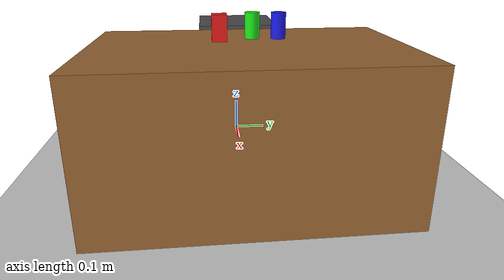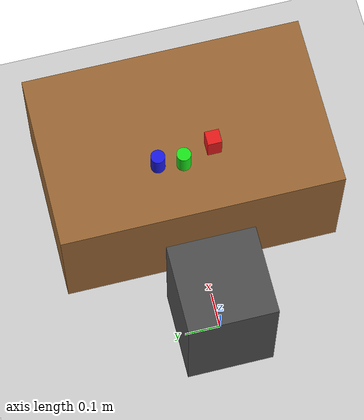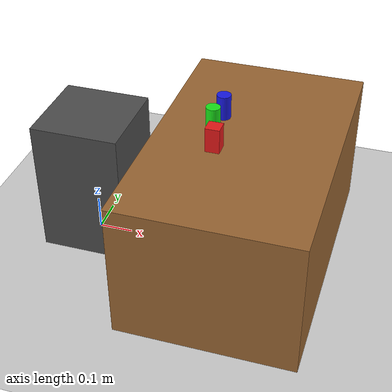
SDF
<?xml version="1.0" ?>
<sdf version="1.8">
  <world name="pick_place_test2">

    <physics name="1ms" type="ignored">
      <max_step_size>0.001</max_step_size>
      <real_time_factor>1.0</real_time_factor>
    </physics>

    <plugin filename="gz-sim-physics-system" name="gz::sim::systems::Physics"/>
    <plugin filename="gz-sim-user-commands-system" name="gz::sim::systems::UserCommands"/>
    <plugin filename="gz-sim-scene-broadcaster-system" name="gz::sim::systems::SceneBroadcaster"/>
    <plugin filename="gz-sim-sensors-system" name="gz::sim::systems::Sensors">
      <render_engine>ogre2</render_engine>
    </plugin>

    <light type="directional" name="sun">
      <cast_shadows>true</cast_shadows>
      <pose>0 0 10 0 0 0</pose>
      <diffuse>0.8 0.8 0.8 1</diffuse>
      <specular>0.2 0.2 0.2 1</specular>
      <direction>-0.5 0.1 -0.9</direction>
    </light>

    <model name="ground_plane">
      <static>true</static>
      <link name="link">
        <collision name="collision">
          <geometry><plane><normal>0 0 1</normal></plane></geometry>
        </collision>
        <visual name="visual">
          <geometry><plane><normal>0 0 1</normal><size>100 100</size></plane></geometry>
          <material>
            <ambient>0.8 0.8 0.8 1</ambient>
            <diffuse>0.8 0.8 0.8 1</diffuse>
          </material>
        </visual>
      </link>
    </model>

    <!-- Robot base pedestal -->
    <model name="robot_base">
      <static>true</static>
      <pose>0 0 0.2 0 0 0</pose>
      <link name="link">
        <collision name="collision">
          <geometry><box><size>0.25 0.25 0.4</size></box></geometry>
        </collision>
        <visual name="visual">
          <geometry><box><size>0.25 0.25 0.4</size></box></geometry>
          <material>
            <ambient>0.3 0.3 0.3 1</ambient>
            <diffuse>0.3 0.3 0.3 1</diffuse>
          </material>
        </visual>
      </link>
    </model>

    <!-- Table in front of robot -->
    <model name="table">
      <static>true</static>
      <pose>0.45 0 0.2 0 0 0</pose>
      <link name="link">
        <collision name="collision">
          <geometry><box><size>0.5 0.8 0.4</size></box></geometry>
        </collision>
        <visual name="visual">
          <geometry><box><size>0.5 0.8 0.4</size></box></geometry>
          <material>
            <ambient>0.6 0.4 0.2 1</ambient>
            <diffuse>0.6 0.4 0.2 1</diffuse>
          </material>
        </visual>
      </link>
    </model>

    <!-- Objects on table - different positions than original -->

    <!-- RED box - left side -->
    <model name="red_box">
      <pose>0.38 -0.07 0.43 0 0 0</pose>
      <link name="link">
        <inertial>
          <mass>0.1</mass>
          <inertia>
            <ixx>0.0001</ixx><iyy>0.0001</iyy><izz>0.0001</izz>
          </inertia>
        </inertial>
        <collision name="collision">
          <geometry><box><size>0.04 0.04 0.08</size></box></geometry>
        </collision>
        <visual name="visual">
          <geometry><box><size>0.04 0.04 0.08</size></box></geometry>
          <material>
            <ambient>0.9 0.1 0.1 1</ambient>
            <diffuse>0.9 0.1 0.1 1</diffuse>
          </material>
        </visual>
      </link>
    </model>

    <!-- GREEN cylinder - center -->
    <model name="green_cylinder">
      <pose>0.35 0.02 0.43 0 0 0</pose>
      <link name="link">
        <inertial>
          <mass>0.1</mass>
          <inertia>
            <ixx>0.0001</ixx><iyy>0.0001</iyy><izz>0.0001</izz>
          </inertia>
        </inertial>
        <collision name="collision">
          <geometry><cylinder><radius>0.02</radius><length>0.08</length></cylinder></geometry>
        </collision>
        <visual name="visual">
          <geometry><cylinder><radius>0.02</radius><length>0.08</length></cylinder></geometry>
          <material>
            <ambient>0.1 0.9 0.1 1</ambient>
            <diffuse>0.1 0.9 0.1 1</diffuse>
          </material>
        </visual>
      </link>
    </model>

    <!-- BLUE cylinder - right side -->
    <model name="blue_cylinder">
      <pose>0.36 0.09 0.43 0 0 0</pose>
      <link name="link">
        <inertial>
          <mass>0.1</mass>
          <inertia>
            <ixx>0.0001</ixx><iyy>0.0001</iyy><izz>0.0001</izz>
          </inertia>
        </inertial>
        <collision name="collision">
          <geometry><cylinder><radius>0.02</radius><length>0.08</length></cylinder></geometry>
        </collision>
        <visual name="visual">
          <geometry><cylinder><radius>0.02</radius><length>0.08</length></cylinder></geometry>
          <material>
            <ambient>0.1 0.1 0.9 1</ambient>
            <diffuse>0.1 0.1 0.9 1</diffuse>
          </material>
        </visual>
      </link>
    </model>

  </world>
</sdf>
